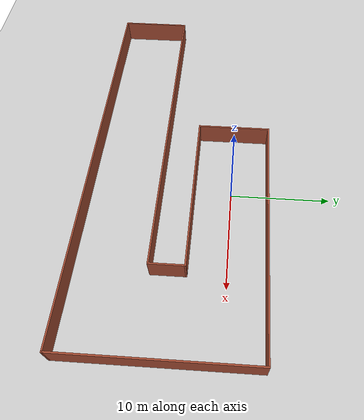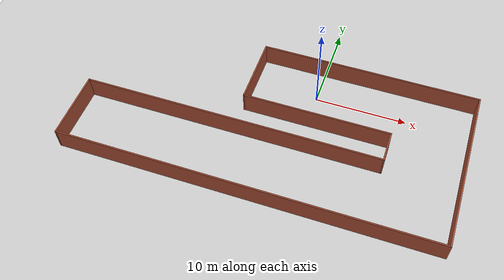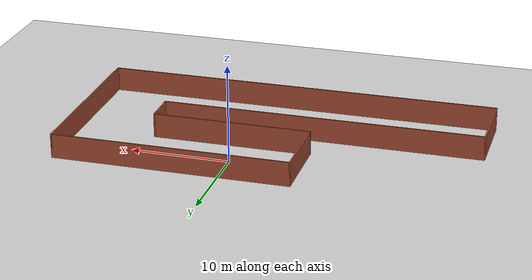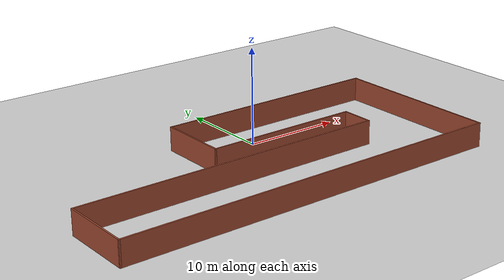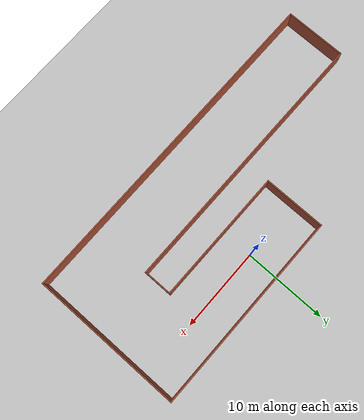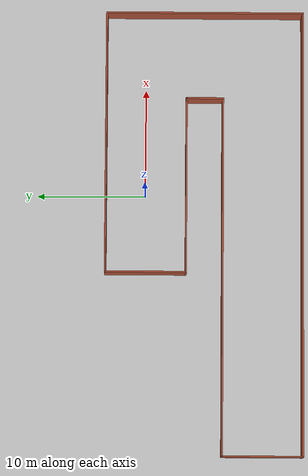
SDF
<sdf version="1.7">
 <world name="default">
  <light name="sun" type="directional">
   <pose>0 0 10 0 -0 0</pose>
   <diffuse>0.8 0.8 0.8 1</diffuse>
   <specular>0.2 0.2 0.2 1</specular>
   <attenuation>
    <range>1000</range>
    <constant>0.9</constant>
    <linear>0.01</linear>
    <quadratic>0.001</quadratic>
   </attenuation>
   <direction>-0.5 0.1 -0.9</direction>
   <spot><inner_angle>0</inner_angle><outer_angle>0</outer_angle><falloff>0</falloff></spot>
  </light>
  <model name="ground_plane">
   <static>1</static>
   <link name="link">
    <collision name="collision">
     <geometry><plane><normal>0 0 1</normal><size>1000 1000</size></plane></geometry>
     <surface><friction><ode><mu>10000</mu><mu2>5000</mu2></ode></friction></surface>
    </collision>
    <visual name="visual">
     <cast_shadows>0</cast_shadows>
     <geometry><plane><normal>0 0 1</normal><size>1000 1000</size></plane></geometry>
     <material>
      <script><uri>file://media/materials/scripts/gazebo.material</uri><name>Gazebo/Grey</name></script>
     </material>
    </visual>
    <velocity_decay><linear>0</linear><angular>0</angular></velocity_decay>
   </link>
  </model>
  <physics type="ode">
   <max_step_size>0.01</max_step_size>
   <real_time_factor>1</real_time_factor>
   <real_time_update_rate>100</real_time_update_rate>
  </physics>
  <scene><ambient>0.4 0.4 0.4 1</ambient><background>0.7 0.7 0.7 1</background><shadows>1</shadows></scene>
  <spherical_coordinates>
   <surface_model>EARTH_WGS84</surface_model>
   <latitude_deg>0</latitude_deg>
   <longitude_deg>0</longitude_deg>
   <elevation>0</elevation>
   <heading_deg>0</heading_deg>
  </spherical_coordinates>
  <gravity>0 0 -9.8</gravity>
  <magnetic_field>6e-06 2.3e-05 -4.2e-05</magnetic_field>
  <atmosphere type="adiabatic"/>
  <model name="Untitled">
   <pose>-3.48335 -5.3913 0 0 -0 0</pose>
   <link name="Wall_20">
    <collision name="Wall_20_Collision">
     <geometry><box><size>24.25 0.15 2.5</size></box></geometry>
     <pose>0 0 1.25 0 -0 0</pose>
    </collision>
    <visual name="Wall_20_Visual">
     <pose>0 0 1.25 0 -0 0</pose>
     <geometry><box><size>24.25 0.15 2.5</size></box></geometry>
     <material>
      <script><uri>file://media/materials/scripts/gazebo.material</uri><name>Gazebo/Bricks</name></script>
      <ambient>1 1 1 1</ambient>
     </material>
     <meta><layer>0</layer></meta>
    </visual>
    <pose>8.375 9.05 0 0 -0 0</pose>
   </link>
   <link name="Wall_21">
    <collision name="Wall_21_Collision">
     <geometry><box><size>18.25 0.15 2.5</size></box></geometry>
     <pose>0 0 1.25 0 -0 0</pose>
    </collision>
    <visual name="Wall_21_Visual">
     <pose>0 0 1.25 0 -0 0</pose>
     <geometry><box><size>18.25 0.15 2.5</size></box></geometry>
     <material>
      <script><uri>file://media/materials/scripts/gazebo.material</uri><name>Gazebo/Bricks</name></script>
      <ambient>1 1 1 1</ambient>
     </material>
     <meta><layer>0</layer></meta>
    </visual>
    <pose>20.425 0 0 0 -0 -1.5708</pose>
   </link>
   <link name="Wall_22">
    <collision name="Wall_22_Collision">
     <geometry><box><size>41 0.15 2.5</size></box></geometry>
     <pose>0 0 1.25 0 -0 0</pose>
    </collision>
    <visual name="Wall_22_Visual">
     <pose>0 0 1.25 0 -0 0</pose>
     <geometry><box><size>41 0.15 2.5</size></box></geometry>
     <material>
      <script><uri>file://media/materials/scripts/gazebo.material</uri><name>Gazebo/Bricks</name></script>
      <ambient>1 1 1 1</ambient>
     </material>
     <meta><layer>0</layer></meta>
    </visual>
    <pose>0 -9.05 0 0 -0 3.14159</pose>
   </link>
   <link name="Wall_23">
    <collision name="Wall_23_Collision">
     <geometry><box><size>7.5 0.15 2.5</size></box></geometry>
     <pose>0 0 1.25 0 -0 0</pose>
    </collision>
    <visual name="Wall_23_Visual">
     <pose>0 0 1.25 0 -0 0</pose>
     <geometry><box><size>7.5 0.15 2.5</size></box></geometry>
     <material>
      <script><uri>file://media/materials/scripts/gazebo.material</uri><name>Gazebo/Bricks</name></script>
      <ambient>1 1 1 1</ambient>
     </material>
     <meta><layer>0</layer></meta>
    </visual>
    <pose>-20.425 -5.375 0 0 -0 1.5708</pose>
   </link>
   <link name="Wall_24">
    <collision name="Wall_24_Collision">
     <geometry><box><size>33 0.15 2.5</size></box></geometry>
     <pose>0 0 1.25 0 -0 0</pose>
    </collision>
    <visual name="Wall_24_Visual">
     <pose>0 0 1.25 0 -0 0</pose>
     <geometry><box><size>33 0.15 2.5</size></box></geometry>
     <material>
      <script><uri>file://media/materials/scripts/gazebo.material</uri><name>Gazebo/Bricks</name></script>
      <ambient>1 1 1 1</ambient>
     </material>
     <meta><layer>0</layer></meta>
    </visual>
    <pose>-4 -1.7 0 0 -0 0</pose>
   </link>
   <link name="Wall_25">
    <collision name="Wall_25_Collision">
     <geometry><box><size>3.5 0.15 2.5</size></box></geometry>
     <pose>0 0 1.25 0 -0 0</pose>
    </collision>
    <visual name="Wall_25_Visual">
     <pose>0 0 1.25 0 -0 0</pose>
     <geometry><box><size>3.5 0.15 2.5</size></box></geometry>
     <material>
      <script><uri>file://media/materials/scripts/gazebo.material</uri><name>Gazebo/Bricks</name></script>
      <ambient>1 1 1 1</ambient>
     </material>
     <meta><layer>0</layer></meta>
    </visual>
    <pose>12.425 -0.025 0 0 -0 1.5708</pose>
   </link>
   <link name="Wall_26">
    <collision name="Wall_26_Collision">
     <geometry><box><size>16.25 0.15 2.5</size></box></geometry>
     <pose>0 0 1.25 0 -0 0</pose>
    </collision>
    <visual name="Wall_26_Visual">
     <pose>0 0 1.25 0 -0 0</pose>
     <geometry><box><size>16.25 0.15 2.5</size></box></geometry>
     <material>
      <script><uri>file://media/materials/scripts/gazebo.material</uri><name>Gazebo/Bricks</name></script>
      <ambient>1 1 1 1</ambient>
     </material>
     <meta><layer>0</layer></meta>
    </visual>
    <pose>4.375 1.65 0 0 -0 3.14159</pose>
   </link>
   <link name="Wall_27">
    <collision name="Wall_27_Collision">
     <geometry><box><size>7.55 0.15 2.5</size></box></geometry>
     <pose>0 0 1.25 0 -0 0</pose>
    </collision>
    <visual name="Wall_27_Visual">
     <pose>0 0 1.25 0 -0 0</pose>
     <geometry><box><size>7.55 0.15 2.5</size></box></geometry>
     <material>
      <script><uri>file://media/materials/scripts/gazebo.material</uri><name>Gazebo/Bricks</name></script>
      <ambient>1 1 1 1</ambient>
     </material>
     <meta><layer>0</layer></meta>
    </visual>
    <pose>-3.675 5.35 0 0 -0 1.5708</pose>
   </link>
   <static>1</static>
  </model>
 </world>
</sdf>
